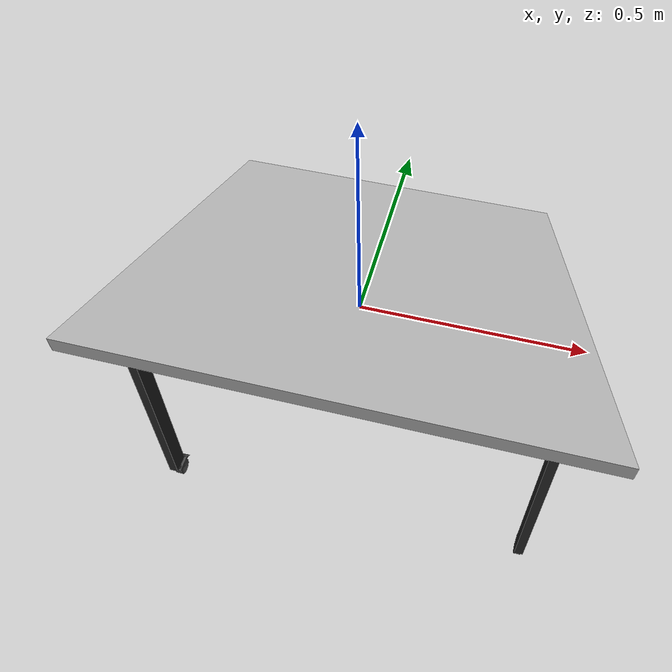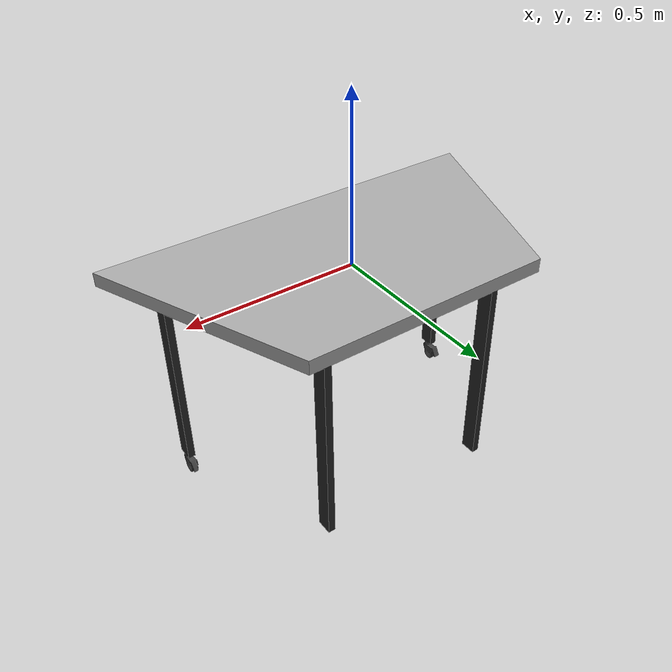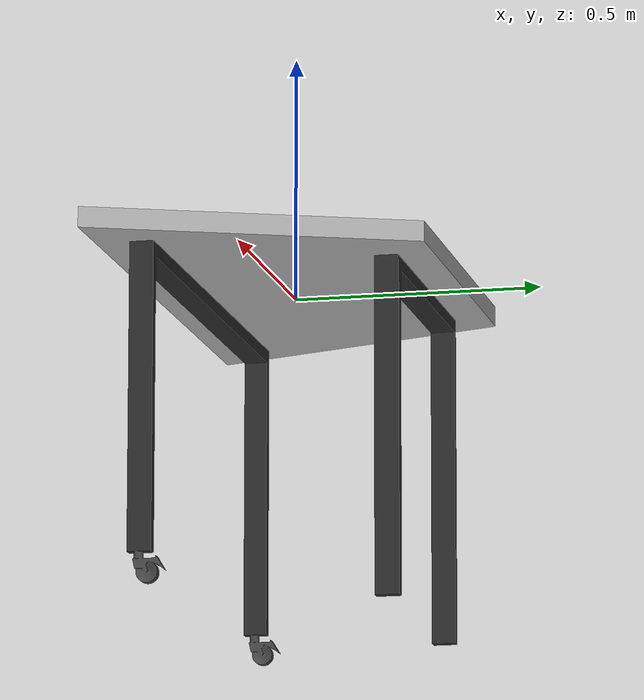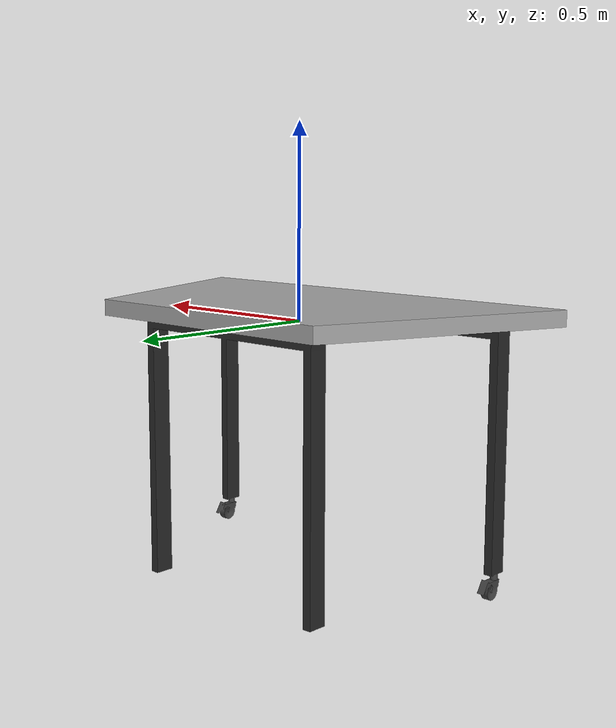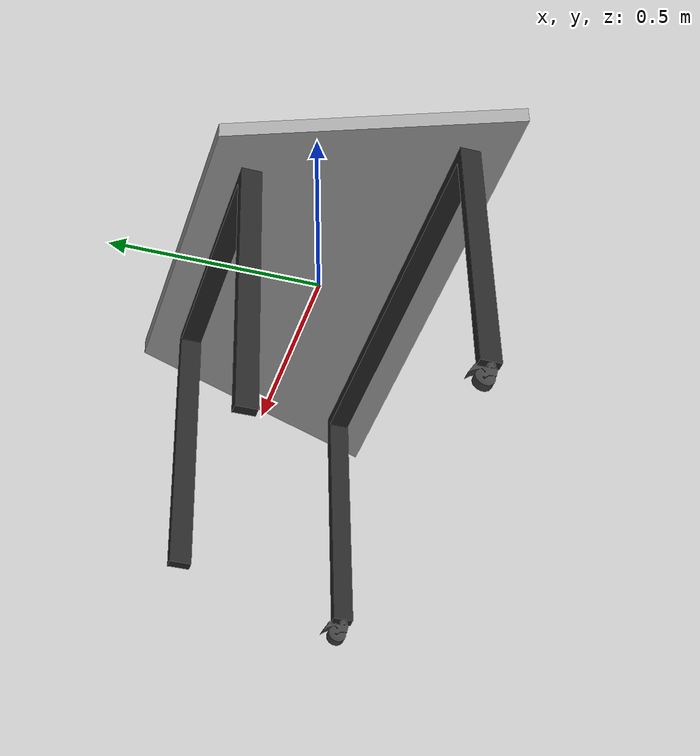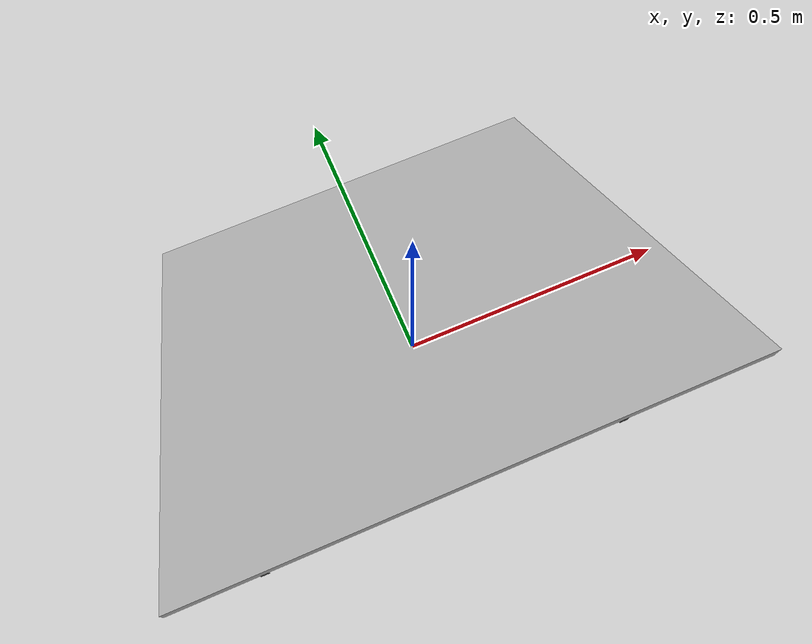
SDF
<?xml version='1.0'?>
<sdf version='1.5'>
  <model name="trapezoid_table">
    <pose>0 0 0 0 0 0</pose>
    <static>false</static>
    <link name='model_body'>
      <visual name="visual">
        <geometry>
          <mesh>
            <uri>model://robert_gazebo/meshes/trapezoid_table_visual.dae</uri>
            <scale>1 1 1</scale>
          </mesh>
         </geometry>
      </visual>

      <collision name="collision">
        <geometry>
          <mesh>
            <uri>model://robert_gazebo/meshes/trapezoid_table_collision.dae</uri>
            <scale>1 1 1</scale>
          </mesh>
        </geometry>
      </collision>

      <inertial>
        <pose> 0 0 0 0 0 0</pose>
        <inertia>
          <ixx>1.34</ixx>
          <ixy>0</ixy>
          <ixz>0</ixz>
          <iyy>1.34</iyy>
          <iyz>0</iyz>
          <izz>1.45</izz>
        </inertia>
        <mass>10.0</mass>
      </inertial>
    </link>
  </model>
</sdf>
